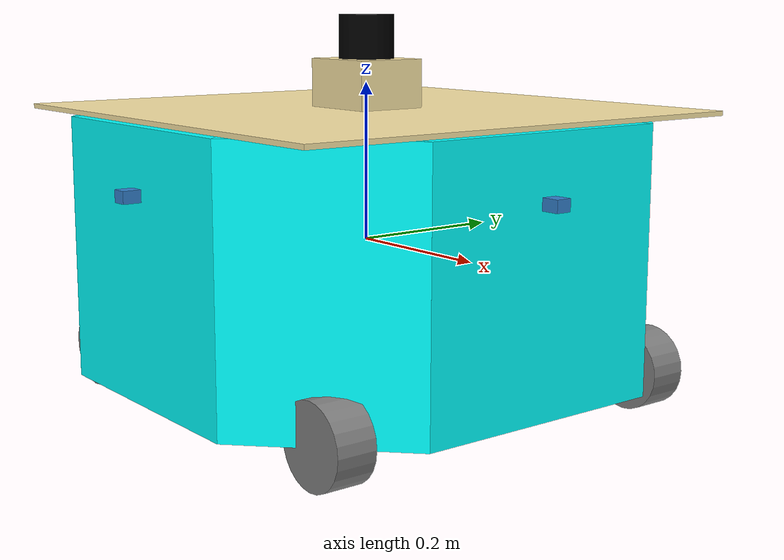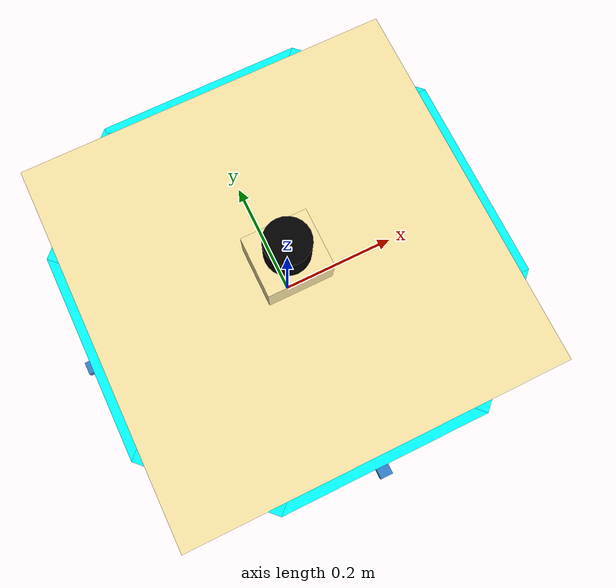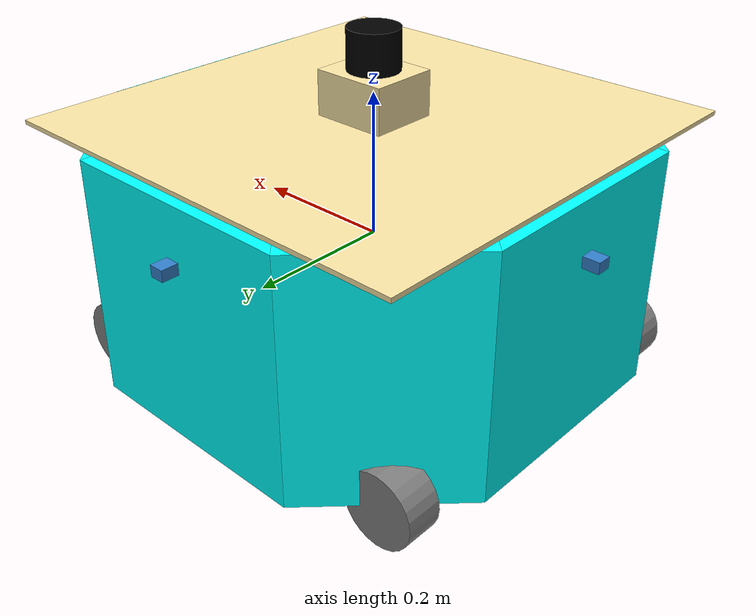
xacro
<?xml version="1.0"?>
<robot name="test_robot" xmlns:xacro="http://ros.org/wiki/xacro">
  <!-- Define robot constants -->
      <!-- 직선 부분 (edge face) -->
  <xacro:property name="base_f_width" value="0.33"/>
  <xacro:property name="base_f_length" value="0.33"/>
  <xacro:property name="base_f_height" value="0.325"/>

      <!-- 모서리 부분 (corner element) -->
  <xacro:property name="base_e_width" value="0.2263"/>
  <xacro:property name="base_e_length" value="0.2263"/>
  <xacro:property name="base_e_height" value="0.325"/>

      <!-- lidar 얹을 박스 크기 -->
  <xacro:property name="base_height" value="0.325"/>
  <xacro:property name="box_width" value="0.094"/>
  <xacro:property name="box_length" value="0.104"/>
  <xacro:property name="box_height" value="0.061"/>

        <!-- 은판 크기 -->
  <xacro:property name="silver_width" value="0.62"/>
  <xacro:property name="silver_length" value="0.62"/>
  <xacro:property name="silver_height" value="0.006"/>

      <!-- shape of the robot's two wheels -->
  <xacro:property name="wheel_radius" value="0.068"/>
  <xacro:property name="wheel_width" value="0.025"/>
  <xacro:property name="wheel_mass" value="0.5"/>

     <!-- y축을 따라 바퀴와 차체 사이의 간격 조정 -->
  <xacro:property name="wheel_yinset" value="0.345"/>
     <!-- 각각 z축과 x축을 따라 바퀴의 위치를 조정 -->
  <xacro:property name="wheel_zoff" value="0.13"/>
  <xacro:property name="wheel_xoff" value="0.12"/>

         <!-- 캐스터 휠 설정 -->
  <xacro:property name="caster_radius" value="0.05"/>
  <xacro:property name="caster_width" value="0.05"/>
  <xacro:property name="caster_ygap" value="0.24"/>
  <xacro:property name="caster_zoff" value="0.155"/>
  <xacro:property name="caster_xoff_front" value="0.25"/>
  <xacro:property name="caster_xoff_back" value="-0.25"/>
  <xacro:property name="caster_mass" value = "0.3"/>

  <!-- 초음파 센서 설정 -->
      <!-- 초음파 센서 전체 크기 -->
  <xacro:property name="ultra_width" value="0.045"/>     <!-- 45 mm -->
  <xacro:property name="ultra_depth" value="0.020"/>      <!-- 20 mm -->
  <xacro:property name="ultra_height" value="0.015"/>     <!-- 15 mm -->

    <!-- 실린더 형태 센서부 -->
  <xacro:property name="ultra_cylinder_radius" value="0.0085"/>
  <xacro:property name="ultra_cylinder_length" value="0.015"/>

    <!-- 질량 및 관성은 간단화 -->
  <xacro:property name="ultra_mass" value="0.01"/>

     <!-- Define inertial property macros  -->
  <xacro:macro name="box_inertia" params="m w h d">
    <inertial>
      <origin xyz="0 0 0" rpy="${pi/2} 0 ${pi/2}"/>
      <mass value="${m}"/>
      <inertia ixx="${(m/12) * (h*h + d*d)}" ixy="0.0" ixz="0.0" iyy="${(m/12) * (w*w + d*d)}" iyz="0.0" izz="${(m/12) * (w*w + h*h)}"/>
    </inertial>
  </xacro:macro>

  <xacro:macro name="cylinder_inertia" params="m r h">
    <inertial>
      <origin xyz="0 0 0" rpy="${pi/2} 0 0" />
      <mass value="${m}"/>
      <inertia ixx="${(m/12) * (3*r*r + h*h)}" ixy = "0" ixz = "0" iyy="${(m/12) * (3*r*r + h*h)}" iyz = "0" izz="${(m/2) * (r*r)}"/>
    </inertial>
  </xacro:macro>

  <xacro:macro name="sphere_inertia" params="m r">
    <inertial>
      <mass value="${m}"/>
      <inertia ixx="${(2/5) * m * (r*r)}" ixy="0.0" ixz="0.0" iyy="${(2/5) * m * (r*r)}" iyz="0.0" izz="${(2/5) * m * (r*r)}"/>
    </inertial>
  </xacro:macro>

  <!-- Robot Base -->
  <link name="base_link"/>

  <xacro:macro name="octagon_face_box" params="name x y yaw">
    <link name="${name}_link">
      <visual>
        <origin xyz="0 0 0" rpy="0 0 0"/>
        <geometry>
          <box size="${base_f_width} ${base_f_length} ${base_f_height}"/>
        </geometry>
        <material name="Cyan">
          <color rgba="0 1.0 1.0 1.0"/>
        </material>
      </visual>
      <collision>
        <geometry>
          <box size="${base_f_width} ${base_f_length} ${base_f_height}"/>
        </geometry>
      </collision>
      <xacro:box_inertia m="1.875" w="${base_f_width}" d="${base_f_length}" h="${base_f_height}"/>
    </link>

    <joint name="${name}_joint" type="fixed">
      <parent link="base_footprint"/>
      <child link="${name}_link"/>
      <origin xyz="${x} ${y} 0" rpy="0 0 ${yaw}"/>
    </joint>
  </xacro:macro>

  <xacro:octagon_face_box name="face_n" x="0.0" y="0.16" yaw="0"/>
  <xacro:octagon_face_box name="face_s" x="0.0" y="-0.16" yaw="0"/>
  <xacro:octagon_face_box name="face_e" x="0.16" y="0.0" yaw="${pi/2}"/>
  <xacro:octagon_face_box name="face_w" x="-0.16" y="0.0" yaw="${pi/2}"/>

  <xacro:macro name="octagon_corner_box" params="name x y yaw">
    <link name="${name}_link">
      <visual>
        <origin xyz="0 0 0" rpy="0 0 0"/>
        <geometry>
          <box size="${base_e_width} ${base_e_length} ${base_e_height}"/>
        </geometry>
        <material name="Cyan">
          <color rgba="0 1.0 1.0 1.0"/>
        </material>
      </visual>
      <collision>
        <geometry>
          <box size="${base_e_width} ${base_e_length} ${base_e_height}"/>
        </geometry>
      </collision>
      <xacro:box_inertia m="1.875" w="${base_e_width}" d="${base_e_length}" h="${base_e_height}"/>
    </link>

    <joint name="${name}_joint" type="fixed">
      <parent link="base_footprint"/>
      <child link="${name}_link"/>
      <origin xyz="${x} ${y} 0" rpy="0 0 ${yaw}"/>
    </joint>
  </xacro:macro>

  <xacro:octagon_corner_box name="corner_ne" x="0.165" y="0.165" yaw="${pi/4}"/>
  <xacro:octagon_corner_box name="corner_nw" x="-0.165" y="0.165" yaw="${-pi/4}"/>
  <xacro:octagon_corner_box name="corner_se" x="0.165" y="-0.165" yaw="${-pi/4}"/>
  <xacro:octagon_corner_box name="corner_sw" x="-0.165" y="-0.165" yaw="${pi/4}"/>

  <!-- Robot Footprint -->
  <link name="base_footprint"/>

  <joint name="base_joint" type="fixed">
    <parent link="base_footprint"/>
    <child link="base_link"/>
    <origin xyz="0.0 0.0 ${-(wheel_radius+wheel_zoff)}" rpy="0 0 0"/>
  </joint>

  <!-- Wheels -->
  <xacro:macro name="wheel" params="prefix x_reflect y_reflect">
    <link name="${prefix}_link">
      <visual>
        <origin xyz="0 0 0" rpy="${pi/2} 0 0"/>
        <geometry>
            <cylinder radius="${wheel_radius}" length="${wheel_width}"/>
        </geometry>
        <material name="Gray">
          <color rgba="0.5 0.5 0.5 1.0"/>
        </material>
      </visual>
      <collision>
        <origin xyz="0 0 0" rpy="${pi/2} 0 0"/>
        <geometry>
          <cylinder radius="${wheel_radius}" length="${wheel_width}"/>
        </geometry>
      </collision>

      <xacro:cylinder_inertia m="${wheel_mass}" r="${wheel_radius}" h="${wheel_width}"/>
    </link>

    <joint name="${prefix}_joint" type="continuous">
      <parent link="base_footprint"/>
      <child link="${prefix}_link"/>
      <origin xyz="${x_reflect * wheel_xoff} ${y_reflect * (wheel_yinset/2)} ${-wheel_zoff}" />
      <axis xyz="0 1 0"/>
      <limit effort="10.0" velocity="10.0"/>
    </joint>
  </xacro:macro>

  <xacro:wheel prefix="drivewhl_l" x_reflect="0" y_reflect="1" />
  <xacro:wheel prefix="drivewhl_r" x_reflect="0" y_reflect="-1" />

  <!-- Caster Wheel -->
  <xacro:macro name="caster_wheel" params="prefix x_pos y_pos">
    <link name="${prefix}_link">
      <visual>
        <origin xyz="0 0 0" rpy="${pi/2} 0 0"/>
        <geometry>
            <cylinder radius="${caster_radius}" length="${caster_width}"/>
        </geometry>
        <material name="Gray">
          <color rgba="0.5 0.5 0.5 1.0"/>
        </material>
      </visual>
      <collision>
        <origin xyz="0 0 0" rpy="${pi/2} 0 0"/>
        <geometry>
          <cylinder radius="${caster_radius}" length="${caster_width}"/>
        </geometry>
      </collision>

      <xacro:cylinder_inertia m="${caster_mass}" r="${caster_radius}" h="${caster_width}"/>
    </link>

  <joint name="${prefix}_joint" type="fixed">
    <parent link="base_footprint"/>
    <child link="${prefix}_link"/>
    <origin xyz="${x_pos} ${y_pos} ${-caster_zoff}" rpy="0 0 0"/>
  </joint>
  </xacro:macro>

  <!-- 앞쪽 좌우 -->
  <xacro:caster_wheel prefix="caster_fl" x_pos="${caster_xoff_front}" y_pos="${caster_ygap}" />
  <xacro:caster_wheel prefix="caster_fr" x_pos="${caster_xoff_front}" y_pos="${-caster_ygap}" />

  <!-- 뒤쪽 좌우 -->
  <xacro:caster_wheel prefix="caster_rl" x_pos="${caster_xoff_back}" y_pos="${caster_ygap}" />
  <xacro:caster_wheel prefix="caster_rr" x_pos="${caster_xoff_back}" y_pos="${-caster_ygap}" />

  <!-- 은판 -->
  <link name="silver_link">
    <visual>
      <geometry>
        <box size="${silver_length} ${silver_width} ${silver_height}"/>
      </geometry>
      <material name="gray">
        <color rgba="0.98 0.90 0.65 1.0"/>
      </material>
    </visual>
    <collision>
      <geometry>
        <box size="${silver_length} ${silver_width} ${silver_height}"/>
      </geometry>
    </collision>
    <xacro:box_inertia m="0.5" w="${silver_width}" d="${silver_length}" h="${silver_height}"/>
  </link>

  <joint name="silver_joint" type="fixed">
    <parent link="base_footprint"/>
    <child link="silver_link"/>
    <origin xyz="0 0 ${base_height / 2 + silver_height / 2}" rpy="0 0 0"/>
  </joint>

  <!-- lidar 박스 -->
  <link name="box_link">
    <visual>
      <geometry>
        <box size="${box_length} ${box_width} ${box_height}"/>
      </geometry>
      <material name="gray">
        <color rgba="0.98 0.90 0.65 1.0"/>
      </material>
    </visual>
    <collision>
      <geometry>
        <box size="${box_length} ${box_width} ${box_height}"/>
      </geometry>
    </collision>
    <xacro:box_inertia m="0.5" w="${box_width}" d="${box_length}" h="${box_height}"/>
  </link>

  <joint name="box_joint" type="fixed">
    <parent link="base_footprint"/>
    <child link="box_link"/>
    <origin xyz="0 0 ${base_height / 2 + silver_height + box_height / 2}" rpy="0 0 0"/>
  </joint>

  <!-- lidar -->
  <link name="lidar_frame">
    <inertial>
      <origin xyz="0 0 0" rpy="0 0 0"/>
      <mass value="0.17"/>
      <inertia ixx="0.001"  ixy="0"  ixz="0" iyy="0.001" iyz="0" izz="0.002" />
      <!-- inertia 실제 값(아래) -->
    </inertial>

    <collision>
      <origin xyz="0 0 0" rpy="0 0 0"/>
      <geometry>
         <cylinder radius="0.035" length="0.055"/>
      </geometry>
    </collision>

    <visual>
      <origin xyz="0 0 0" rpy="0 0 0"/>
      <geometry>
         <cylinder radius="0.035" length="0.055"/>
      </geometry>
      <material name="black">
        <color rgba="0 0 0 1"/>
      </material>
    </visual>
  </link>

  <joint name="lidar_joint" type="fixed">
    <parent link="box_link"/>
    <child link="lidar_frame"/>
    <origin xyz="0 0 ${box_height/2 + 0.0275}" rpy="0 0 0"/>
  </joint>

    <!-- 초음파 -->
  <xacro:macro name="ultrasonic_sensor" params="name parent_link x y z yaw topic">
    <link name="${name}_link">
      <visual>
        <origin xyz="0 0 0" rpy="0 0 0"/>
        <geometry>
          <box size="${ultra_width} ${ultra_depth} ${ultra_height}"/>
        </geometry>
        <material name="Blue">
          <color rgba="0.2 0.5 0.8 1.0"/>
        </material>
      </visual>
      <collision>
        <geometry>
          <box size="${ultra_width} ${ultra_depth} ${ultra_height}"/>
        </geometry>
      </collision>
      <inertial>
        <mass value="${ultra_mass}"/>
        <inertia ixx="1e-6" iyy="1e-6" izz="1e-6" ixy="0" ixz="0" iyz="0"/>
      </inertial>
    </link>

    <joint name="${name}_joint" type="fixed">
      <parent link="${parent_link}"/>
      <child link="${name}_link"/>
      <origin xyz="${x} ${y} ${z}" rpy="0 0 ${yaw}"/>
    </joint>
  </xacro:macro>

  <xacro:ultrasonic_sensor name="echo_front" parent_link="base_footprint" x="0.325"  y="0.0"  z="0.085"  yaw="0.0"  topic="/echo_front"/>
  <xacro:ultrasonic_sensor name="echo_back" parent_link="base_footprint" x="-0.325"  y="0.0"  z="0.085"  yaw="${pi}"  topic="/echo_back"/>
  <xacro:ultrasonic_sensor name="echo_right" parent_link="base_footprint" x="0.0"  y="-0.325"  z="0.085"  yaw="${-pi/2}"  topic="/echo_right"/>
  <xacro:ultrasonic_sensor name="echo_left" parent_link="base_footprint" x="0.0"  y="0.325"  z="0.085"  yaw="${pi/2}"  topic="/echo_left"/>
</robot>
